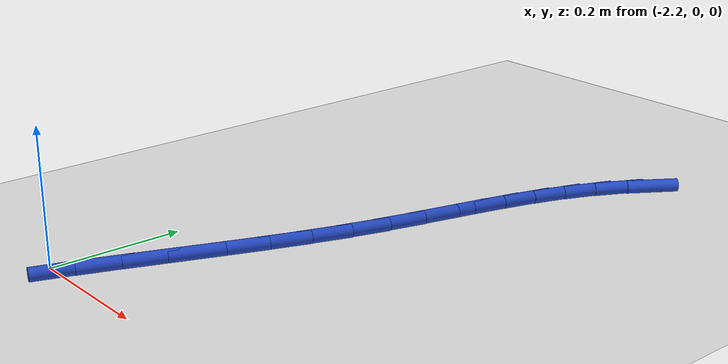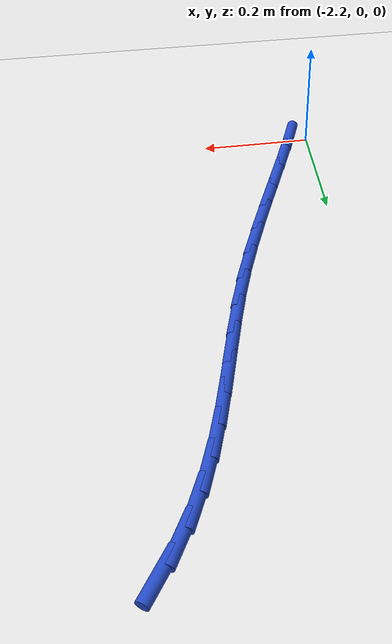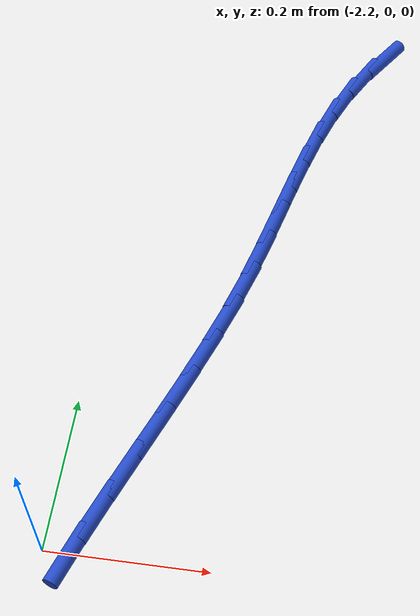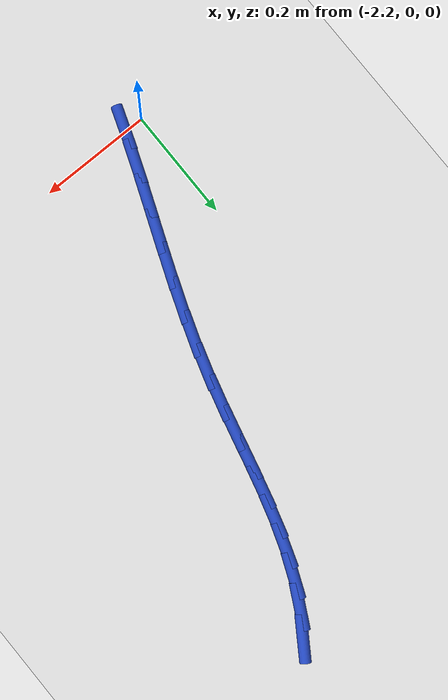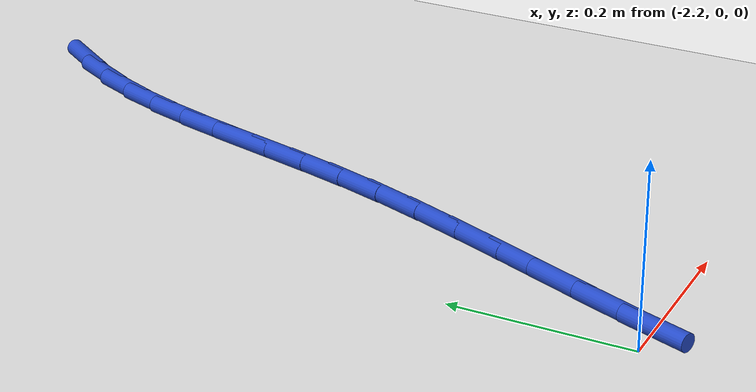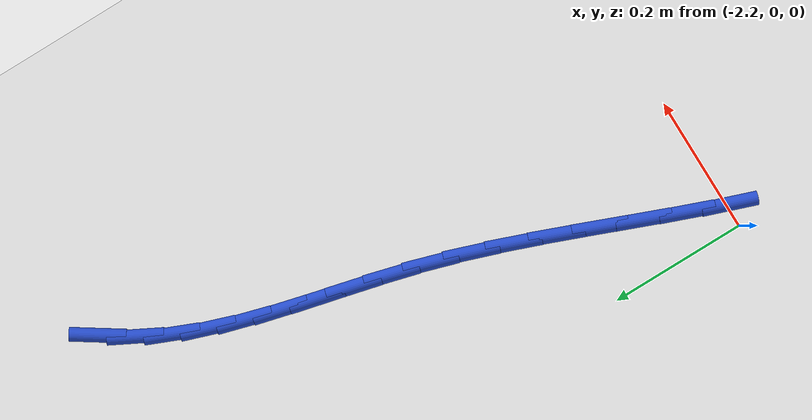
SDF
<sdf version="1.6">
 <world name="default">
  <model name="ground_plane">
   <static>1</static>
   <link name="link">
    <collision name="collision">
     <geometry><plane><normal>0 0 1</normal><size>100 100</size></plane></geometry>
     <surface><friction><ode><mu>100</mu><mu2>50</mu2></ode></friction></surface>
    </collision>
    <visual name="visual">
     <cast_shadows>0</cast_shadows>
     <geometry><plane><normal>0 0 1</normal><size>100 100</size></plane></geometry>
     <material>
      <script><uri>file://media/materials/scripts/gazebo.material</uri><name>Gazebo/WhiteGlow</name></script>
     </material>
    </visual>
   </link>
  </model>
  <model name="line">
   <link name="link_49">
    <pose>-1.8612035500248634 0.8404547202979715 0.01 0 1.57 0.9866039278404146</pose>
    <collision name="collision">
     <geometry><cylinder><radius>0.01</radius><length>0.08</length></cylinder></geometry>
    </collision>
    <visual name="visual">
     <material>
      <script><name>Gazebo/Blue</name><uri>file://media/materials/scripts/gazebo.material</uri></script>
     </material>
     <geometry><cylinder><radius>0.01</radius><length>0.08</length></cylinder></geometry>
    </visual>
   </link>
   <link name="link_50">
    <pose>-1.8900783778141779 0.7967828597869949 0.01 0 1.57 1.0863535675008</pose>
    <collision name="collision">
     <geometry><cylinder><radius>0.01</radius><length>0.08</length></cylinder></geometry>
    </collision>
    <visual name="visual">
     <material>
      <script><name>Gazebo/Blue</name><uri>file://media/materials/scripts/gazebo.material</uri></script>
     </material>
     <geometry><cylinder><radius>0.01</radius><length>0.08</length></cylinder></geometry>
    </visual>
   </link>
   <link name="link_51">
    <pose>-1.91397774385327 0.7513701891894528 0.01 0 1.57 1.1729839464297809</pose>
    <collision name="collision">
     <geometry><cylinder><radius>0.01</radius><length>0.08</length></cylinder></geometry>
    </collision>
    <visual name="visual">
     <material>
      <script><name>Gazebo/Blue</name><uri>file://media/materials/scripts/gazebo.material</uri></script>
     </material>
     <geometry><cylinder><radius>0.01</radius><length>0.08</length></cylinder></geometry>
    </visual>
   </link>
   <link name="link_52">
    <pose>-1.9337411359303822 0.7043387856933989 0.01 0 1.57 1.2418475085407574</pose>
    <collision name="collision">
     <geometry><cylinder><radius>0.01</radius><length>0.08</length></cylinder></geometry>
    </collision>
    <visual name="visual">
     <material>
      <script><name>Gazebo/Blue</name><uri>file://media/materials/scripts/gazebo.material</uri></script>
     </material>
     <geometry><cylinder><radius>0.01</radius><length>0.08</length></cylinder></geometry>
    </visual>
   </link>
   <link name="link_53">
    <pose>-1.9503163079099084 0.6557811934715647 0.01 0 1.57 1.2915445841042064</pose>
    <collision name="collision">
     <geometry><cylinder><radius>0.01</radius><length>0.08</length></cylinder></geometry>
    </collision>
    <visual name="visual">
     <material>
      <script><name>Gazebo/Blue</name><uri>file://media/materials/scripts/gazebo.material</uri></script>
     </material>
     <geometry><cylinder><radius>0.01</radius><length>0.08</length></cylinder></geometry>
    </visual>
   </link>
   <link name="link_54">
    <pose>-1.9646510136562412 0.6057899566966805 0.01 0 1.57 1.3219910064315248</pose>
    <collision name="collision">
     <geometry><cylinder><radius>0.01</radius><length>0.08</length></cylinder></geometry>
    </collision>
    <visual name="visual">
     <material>
      <script><name>Gazebo/Blue</name><uri>file://media/materials/scripts/gazebo.material</uri></script>
     </material>
     <geometry><cylinder><radius>0.01</radius><length>0.08</length></cylinder></geometry>
    </visual>
   </link>
   <link name="link_55">
    <pose>-1.9776930070337753 0.5544576195414781 0.01 0 1.57 1.3338560026839452</pose>
    <collision name="collision">
     <geometry><cylinder><radius>0.01</radius><length>0.08</length></cylinder></geometry>
    </collision>
    <visual name="visual">
     <material>
      <script><name>Gazebo/Blue</name><uri>file://media/materials/scripts/gazebo.material</uri></script>
     </material>
     <geometry><cylinder><radius>0.01</radius><length>0.08</length></cylinder></geometry>
    </visual>
   </link>
   <link name="link_56">
    <pose>-1.9903900419069027 0.5018767261786891 0.01 0 1.57 1.3281729297042928</pose>
    <collision name="collision">
     <geometry><cylinder><radius>0.01</radius><length>0.08</length></cylinder></geometry>
    </collision>
    <visual name="visual">
     <material>
      <script><name>Gazebo/Blue</name><uri>file://media/materials/scripts/gazebo.material</uri></script>
     </material>
     <geometry><cylinder><radius>0.01</radius><length>0.08</length></cylinder></geometry>
    </visual>
   </link>
   <link name="link_57">
    <pose>-2.003689872140017 0.44813982078104414 0.01 0 1.57 1.3061615424200212</pose>
    <collision name="collision">
     <geometry><cylinder><radius>0.01</radius><length>0.08</length></cylinder></geometry>
    </collision>
    <visual name="visual">
     <material>
      <script><name>Gazebo/Blue</name><uri>file://media/materials/scripts/gazebo.material</uri></script>
     </material>
     <geometry><cylinder><radius>0.01</radius><length>0.08</length></cylinder></geometry>
    </visual>
   </link>
   <link name="link_58">
    <pose>-2.0185402515975124 0.3933394475212741 0.01 0 1.57 1.2701985743748212</pose>
    <collision name="collision">
     <geometry><cylinder><radius>0.01</radius><length>0.08</length></cylinder></geometry>
    </collision>
    <visual name="visual">
     <material>
      <script><name>Gazebo/Blue</name><uri>file://media/materials/scripts/gazebo.material</uri></script>
     </material>
     <geometry><cylinder><radius>0.01</radius><length>0.08</length></cylinder></geometry>
    </visual>
   </link>
   <link name="link_59">
    <pose>-2.035826823462836 0.3375747513329634 0.01 0 1.57 1.235259031477376</pose>
    <collision name="collision">
     <geometry><cylinder><radius>0.01</radius><length>0.08</length></cylinder></geometry>
    </collision>
    <visual name="visual">
     <material>
      <script><name>Gazebo/Blue</name><uri>file://media/materials/scripts/gazebo.material</uri></script>
     </material>
     <geometry><cylinder><radius>0.01</radius><length>0.08</length></cylinder></geometry>
    </visual>
   </link>
   <link name="link_60">
    <pose>-2.055541891710606 0.2810398160295839 0.01 0 1.57 1.2108553483356106</pose>
    <collision name="collision">
     <geometry><cylinder><radius>0.01</radius><length>0.08</length></cylinder></geometry>
    </collision>
    <visual name="visual">
     <material>
      <script><name>Gazebo/Blue</name><uri>file://media/materials/scripts/gazebo.material</uri></script>
     </material>
     <geometry><cylinder><radius>0.01</radius><length>0.08</length></cylinder></geometry>
    </visual>
   </link>
   <link name="link_61">
    <pose>-2.077008035330329 0.2239998998892331 0.01 0 1.57 1.1961369855959494</pose>
    <collision name="collision">
     <geometry><cylinder><radius>0.01</radius><length>0.08</length></cylinder></geometry>
    </collision>
    <visual name="visual">
     <material>
      <script><name>Gazebo/Blue</name><uri>file://media/materials/scripts/gazebo.material</uri></script>
     </material>
     <geometry><cylinder><radius>0.01</radius><length>0.08</length></cylinder></geometry>
    </visual>
   </link>
   <link name="link_62">
    <pose>-2.099531612355051 0.16672198505863797 0.01 0 1.57 1.1904737354337007</pose>
    <collision name="collision">
     <geometry><cylinder><radius>0.01</radius><length>0.08</length></cylinder></geometry>
    </collision>
    <visual name="visual">
     <material>
      <script><name>Gazebo/Blue</name><uri>file://media/materials/scripts/gazebo.material</uri></script>
     </material>
     <geometry><cylinder><radius>0.01</radius><length>0.08</length></cylinder></geometry>
    </visual>
   </link>
   <link name="link_63">
    <pose>-2.12241898081782 0.10947305368452605 0.01 0 1.57 1.1936800856311365</pose>
    <collision name="collision">
     <geometry><cylinder><radius>0.01</radius><length>0.08</length></cylinder></geometry>
    </collision>
    <visual name="visual">
     <material>
      <script><name>Gazebo/Blue</name><uri>file://media/materials/scripts/gazebo.material</uri></script>
     </material>
     <geometry><cylinder><radius>0.01</radius><length>0.08</length></cylinder></geometry>
    </visual>
   </link>
   <link name="link_64">
    <pose>-2.1449764987516815 0.05252008791362486 0.01 0 1.57 1.206010573394993</pose>
    <collision name="collision">
     <geometry><cylinder><radius>0.01</radius><length>0.08</length></cylinder></geometry>
    </collision>
    <visual name="visual">
     <material>
      <script><name>Gazebo/Blue</name><uri>file://media/materials/scripts/gazebo.material</uri></script>
     </material>
     <geometry><cylinder><radius>0.01</radius><length>0.08</length></cylinder></geometry>
    </visual>
   </link>
   <link name="link_65">
    <pose>-2.166510524189683 -0.0038699301073389127 0.01 0 1.57 1.2281874351664572</pose>
    <collision name="collision">
     <geometry><cylinder><radius>0.01</radius><length>0.08</length></cylinder></geometry>
    </collision>
    <visual name="visual">
     <material>
      <script><name>Gazebo/Blue</name><uri>file://media/materials/scripts/gazebo.material</uri></script>
     </material>
     <geometry><cylinder><radius>0.01</radius><length>0.08</length></cylinder></geometry>
    </visual>
   </link>
  </model>
 </world>
</sdf>
